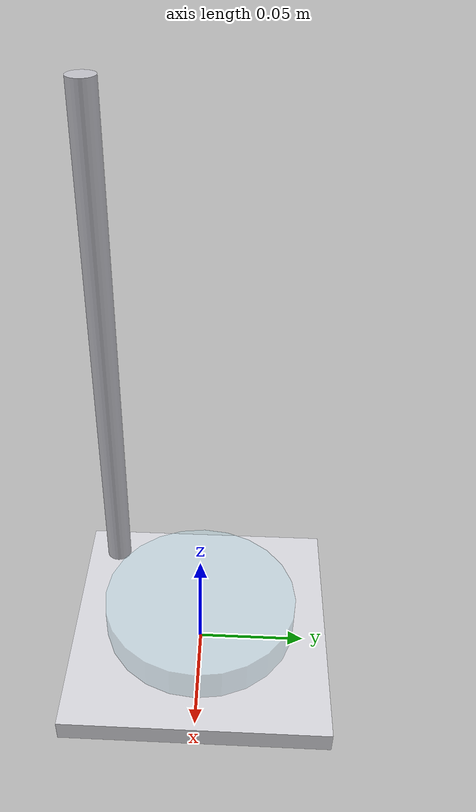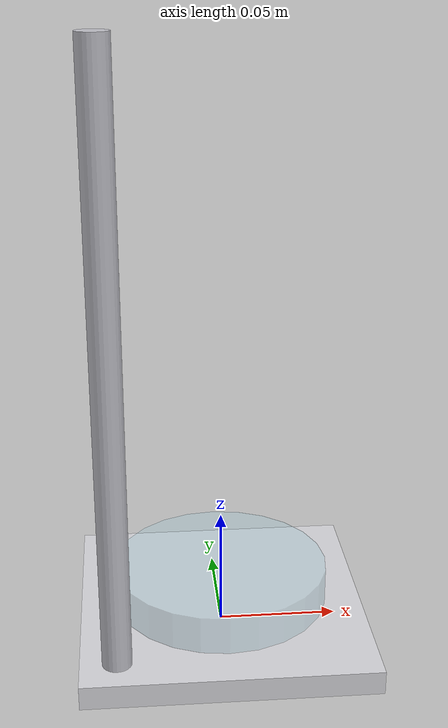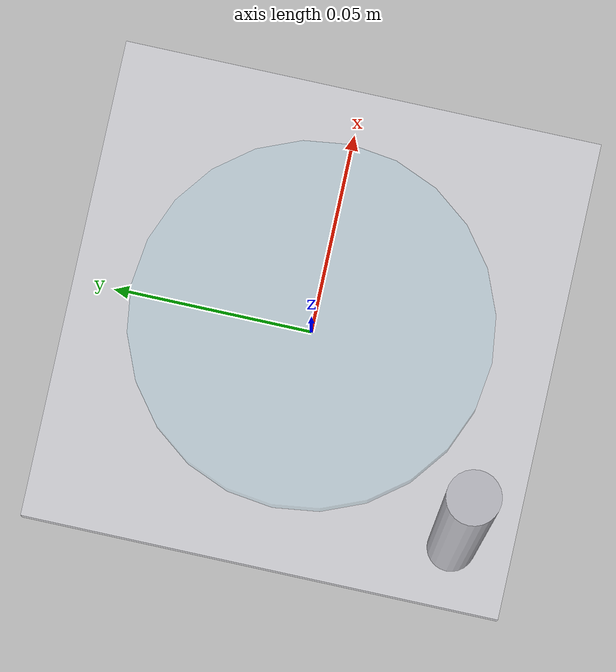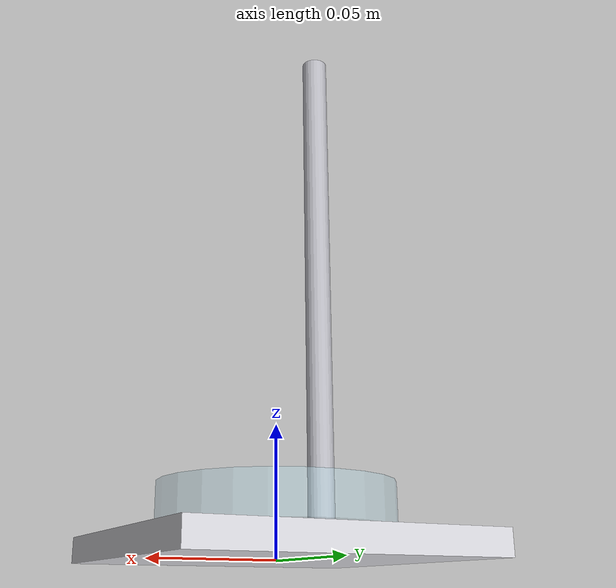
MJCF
<?xml version="1.0" encoding="utf-8"?>
<mujoco model="petri_dish_stacker">
  <compiler angle="radian" autolimits="true"/>
  <default>
    <default class="body"><geom contype="1" conaffinity="1"/></default>
  </default>
  <worldbody>
    <body name="base">
      <geom type="box" size="0.06 0.06 0.005" pos="0 0 0.005" rgba="0.85 0.85 0.87 1" class="body"/>
      <geom type="cylinder" size="0.006 0.12" pos="-0.045 -0.045 0.13" rgba="0.75 0.75 0.78 1" class="body"/>
      <body name="stack_tray" pos="0 0 0.02">
        <joint name="stack_tray_joint" type="slide" axis="0 0 1" range="0 0.10" damping="1.0" frictionloss="0.3"/>
  <geom type="cylinder" size="0.045 0.008" pos="0 0 0" rgba="0.7 0.85 0.9 0.4" class="body"/>
      </body>
    </body>
  </worldbody>
</mujoco>
